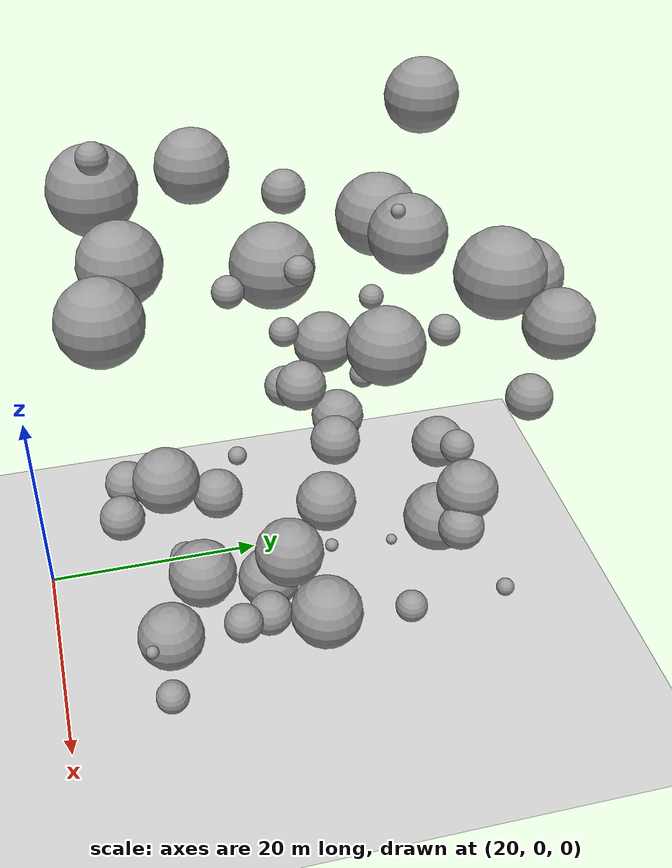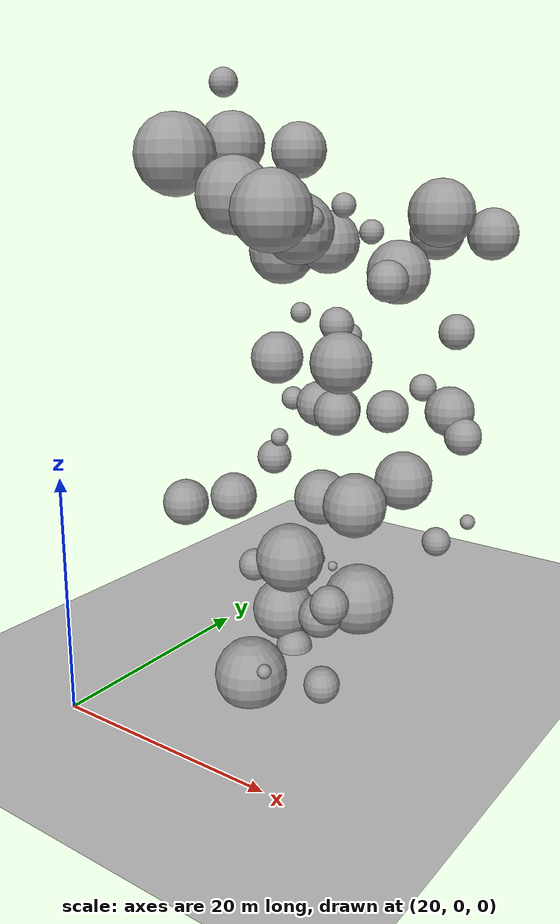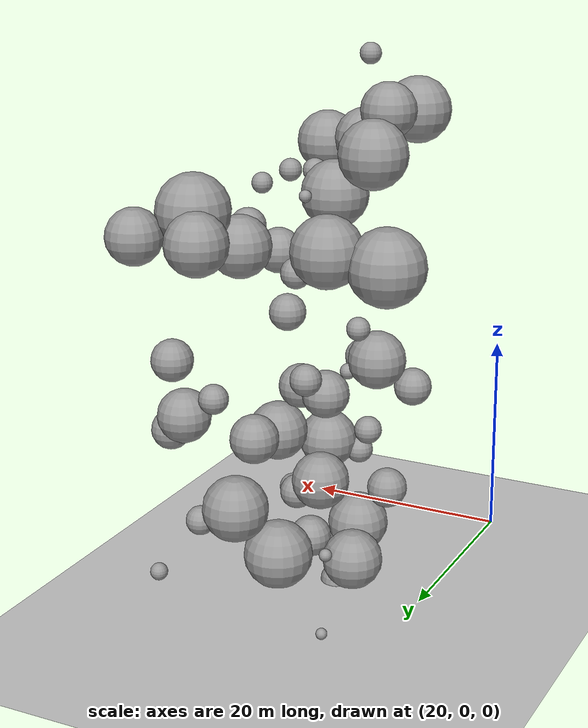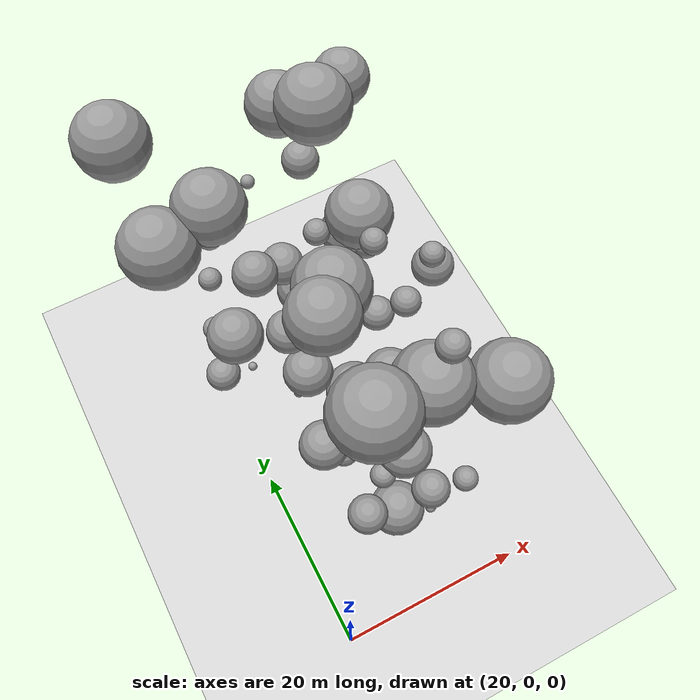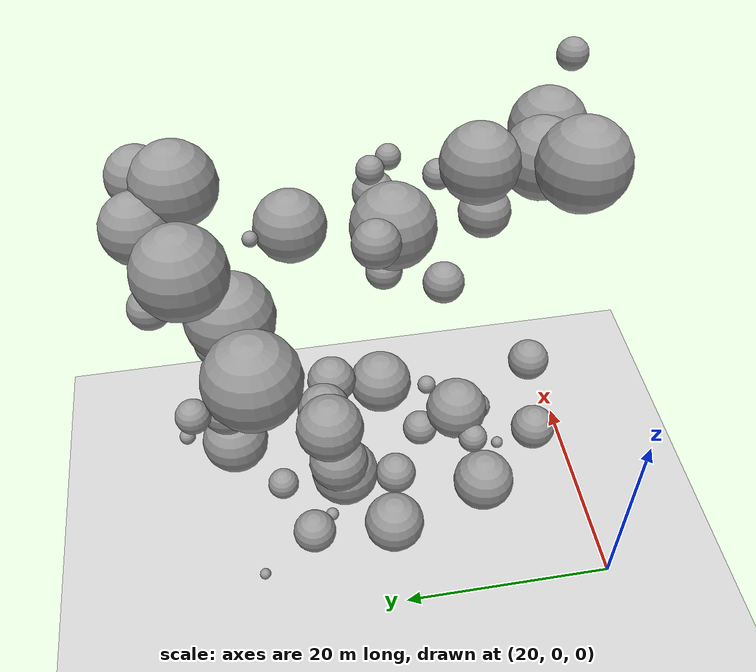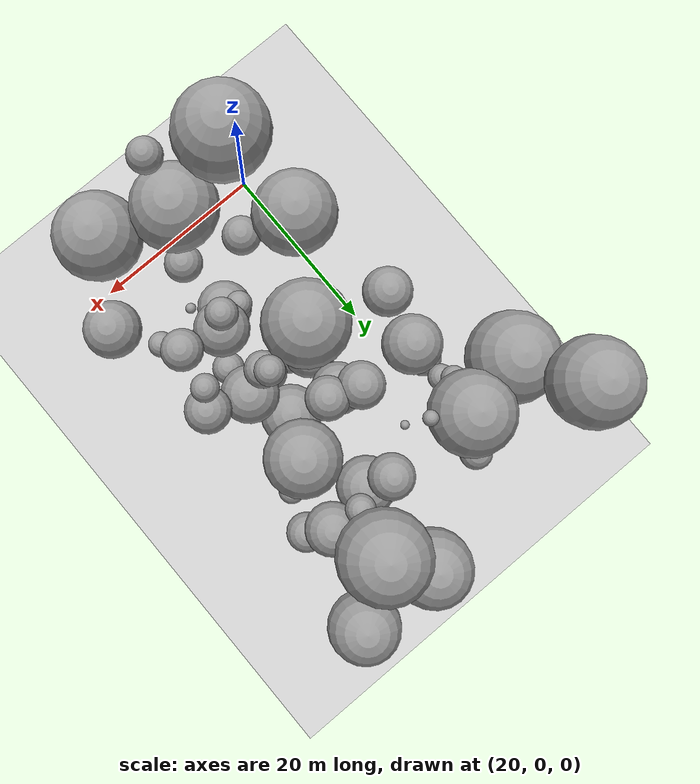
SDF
<sdf version="1.7">
 <world name="default">
  <model name="ground_plane">
   <static>1</static>
   <link name="link">
    <collision name="collision">
     <geometry><plane><normal>0 0 1</normal><size>100 100</size></plane></geometry>
     <surface>
      <contact><collide_bitmask>65535</collide_bitmask></contact>
      <friction><ode><mu>100</mu><mu2>50</mu2></ode></friction>
     </surface>
    </collision>
    <visual name="visual">
     <cast_shadows>0</cast_shadows>
     <geometry><plane><normal>0 0 1</normal><size>100 100</size></plane></geometry>
     <material>
      <script><uri>file://media/materials/scripts/gazebo.material</uri><name>Gazebo/Grey</name></script>
     </material>
    </visual>
   </link>
  </model>
  <model name="sphere_0">
   <static>1</static>
   <pose>20 28 15 0 0 0</pose>
   <link name="link">
    <inertial>
     <mass>2270.6556930112333</mass>
     <inertia>
      <ixx>2802.7631227502798</ixx>
      <iyy>2802.7631227502798</iyy>
      <izz>2802.7631227502798</izz>
      <ixy>0</ixy>
      <ixz>0</ixz>
      <iyz>0</iyz>
     </inertia>
    </inertial>
    <collision name="collision">
     <geometry><sphere><radius>1.7566593790727731</radius></sphere></geometry>
    </collision>
    <visual name="visual">
     <geometry><sphere><radius>1.7566593790727731</radius></sphere></geometry>
     <material>
      <script><uri>file://media/materials/scripts/gazebo.material</uri><name>Gazebo/Grey</name></script>
     </material>
    </visual>
   </link>
  </model>
  <model name="sphere_5">
   <static>1</static>
   <pose>29 17 21 0 0 0</pose>
   <link name="link">
    <inertial>
     <mass>191.27032338474353</mass>
     <inertia>
      <ixx>45.367714927860675</ixx>
      <iyy>45.367714927860675</iyy>
      <izz>45.367714927860675</izz>
      <ixy>0</ixy>
      <ixz>0</ixz>
      <iyz>0</iyz>
     </inertia>
    </inertial>
    <collision name="collision">
     <geometry><sphere><radius>0.7700513045604033</radius></sphere></geometry>
    </collision>
    <visual name="visual">
     <geometry><sphere><radius>0.7700513045604033</radius></sphere></geometry>
     <material>
      <script><uri>file://media/materials/scripts/gazebo.material</uri><name>Gazebo/Grey</name></script>
     </material>
    </visual>
   </link>
  </model>
  <model name="sphere_22">
   <static>1</static>
   <pose>19 34 46 0 0 0</pose>
   <link name="link">
    <inertial>
     <mass>9752.387158366544</mass>
     <inertia>
      <ixx>31806.73874587203</ixx>
      <iyy>31806.73874587203</iyy>
      <izz>31806.73874587203</izz>
      <ixy>0</ixy>
      <ixz>0</ixz>
      <iyz>0</iyz>
     </inertia>
    </inertial>
    <collision name="collision">
     <geometry><sphere><radius>2.8554470301307804</radius></sphere></geometry>
    </collision>
    <visual name="visual">
     <geometry><sphere><radius>2.8554470301307804</radius></sphere></geometry>
     <material>
      <script><uri>file://media/materials/scripts/gazebo.material</uri><name>Gazebo/Grey</name></script>
     </material>
    </visual>
   </link>
  </model>
  <model name="sphere_45">
   <static>1</static>
   <pose>27 30 41 0 0 0</pose>
   <link name="link">
    <inertial>
     <mass>68.0435052667013</mass>
     <inertia>
      <ixx>8.102991478464112</ixx>
      <iyy>8.102991478464112</iyy>
      <izz>8.102991478464112</izz>
      <ixy>0</ixy>
      <ixz>0</ixz>
      <iyz>0</iyz>
     </inertia>
    </inertial>
    <collision name="collision">
     <geometry><sphere><radius>0.5456314014576218</radius></sphere></geometry>
    </collision>
    <visual name="visual">
     <geometry><sphere><radius>0.5456314014576218</radius></sphere></geometry>
     <material>
      <script><uri>file://media/materials/scripts/gazebo.material</uri><name>Gazebo/Grey</name></script>
     </material>
    </visual>
   </link>
  </model>
  <model name="sphere_51">
   <static>1</static>
   <pose>33 13 12 0 0 0</pose>
   <link name="link">
    <inertial>
     <mass>9968.043400749917</mass>
     <inertia>
      <ixx>32987.60499379496</ixx>
      <iyy>32987.60499379496</iyy>
      <izz>32987.60499379496</izz>
      <ixy>0</ixy>
      <ixz>0</ixz>
      <iyz>0</iyz>
     </inertia>
    </inertial>
    <collision name="collision">
     <geometry><sphere><radius>2.876341431337279</radius></sphere></geometry>
    </collision>
    <visual name="visual">
     <geometry><sphere><radius>2.876341431337279</radius></sphere></geometry>
     <material>
      <script><uri>file://media/materials/scripts/gazebo.material</uri><name>Gazebo/Grey</name></script>
     </material>
    </visual>
   </link>
  </model>
  <model name="sphere_57">
   <static>1</static>
   <pose>39 33 19 0 0 0</pose>
   <link name="link">
    <inertial>
     <mass>2531.615639080286</mass>
     <inertia>
      <ixx>3359.9323628471675</ixx>
      <iyy>3359.9323628471675</iyy>
      <izz>3359.9323628471675</izz>
      <ixy>0</ixy>
      <ixz>0</ixz>
      <iyz>0</iyz>
     </inertia>
    </inertial>
    <collision name="collision">
     <geometry><sphere><radius>1.821530245494342</radius></sphere></geometry>
    </collision>
    <visual name="visual">
     <geometry><sphere><radius>1.821530245494342</radius></sphere></geometry>
     <material>
      <script><uri>file://media/materials/scripts/gazebo.material</uri><name>Gazebo/Grey</name></script>
     </material>
    </visual>
   </link>
  </model>
  <model name="sphere_64">
   <static>1</static>
   <pose>29 20 39 0 0 0</pose>
   <link name="link">
    <inertial>
     <mass>12892.265324197353</mass>
     <inertia>
      <ixx>50646.52389224702</ixx>
      <iyy>50646.52389224702</iyy>
      <izz>50646.52389224702</izz>
      <ixy>0</ixy>
      <ixz>0</ixz>
      <iyz>0</iyz>
     </inertia>
    </inertial>
    <collision name="collision">
     <geometry><sphere><radius>3.1338644544676937</radius></sphere></geometry>
    </collision>
    <visual name="visual">
     <geometry><sphere><radius>3.1338644544676937</radius></sphere></geometry>
     <material>
      <script><uri>file://media/materials/scripts/gazebo.material</uri><name>Gazebo/Grey</name></script>
     </material>
    </visual>
   </link>
  </model>
  <model name="sphere_66">
   <static>1</static>
   <pose>32 7 19 0 0 0</pose>
   <link name="link">
    <inertial>
     <mass>2473.127378861323</mass>
     <inertia>
      <ixx>3231.5563059421133</ixx>
      <iyy>3231.5563059421133</iyy>
      <izz>3231.5563059421133</izz>
      <ixy>0</ixy>
      <ixz>0</ixz>
      <iyz>0</iyz>
     </inertia>
    </inertial>
    <collision name="collision">
     <geometry><sphere><radius>1.807393122420857</radius></sphere></geometry>
    </collision>
    <visual name="visual">
     <geometry><sphere><radius>1.807393122420857</radius></sphere></geometry>
     <material>
      <script><uri>file://media/materials/scripts/gazebo.material</uri><name>Gazebo/Grey</name></script>
     </material>
    </visual>
   </link>
  </model>
  <model name="sphere_77">
   <static>1</static>
   <pose>24 33 2 0 0 0</pose>
   <link name="link">
    <inertial>
     <mass>60.101798187273126</mass>
     <inertia>
      <ixx>6.588906755500617</ixx>
      <iyy>6.588906755500617</iyy>
      <izz>6.588906755500617</izz>
      <ixy>0</ixy>
      <ixz>0</ixz>
      <iyz>0</iyz>
     </inertia>
    </inertial>
    <collision name="collision">
     <geometry><sphere><radius>0.5235196076653724</radius></sphere></geometry>
    </collision>
    <visual name="visual">
     <geometry><sphere><radius>0.5235196076653724</radius></sphere></geometry>
     <material>
      <script><uri>file://media/materials/scripts/gazebo.material</uri><name>Gazebo/Grey</name></script>
     </material>
    </visual>
   </link>
  </model>
  <model name="sphere_78">
   <static>1</static>
   <pose>35 27 35 0 0 0</pose>
   <link name="link">
    <inertial>
     <mass>10097.018305198311</mass>
     <inertia>
      <ixx>33702.037523858635</ixx>
      <iyy>33702.037523858635</iyy>
      <izz>33702.037523858635</izz>
      <ixy>0</ixy>
      <ixz>0</ixz>
      <iyz>0</iyz>
     </inertia>
    </inertial>
    <collision name="collision">
     <geometry><sphere><radius>2.888693814193686</radius></sphere></geometry>
    </collision>
    <visual name="visual">
     <geometry><sphere><radius>2.888693814193686</radius></sphere></geometry>
     <material>
      <script><uri>file://media/materials/scripts/gazebo.material</uri><name>Gazebo/Grey</name></script>
     </material>
    </visual>
   </link>
  </model>
  <model name="sphere_114">
   <static>1</static>
   <pose>33 38 38 0 0 0</pose>
   <link name="link">
    <inertial>
     <mass>8843.637686748658</mass>
     <inertia>
      <ixx>27022.10360080191</ixx>
      <iyy>27022.10360080191</iyy>
      <izz>27022.10360080191</izz>
      <ixy>0</ixy>
      <ixz>0</ixz>
      <iyz>0</iyz>
     </inertia>
    </inertial>
    <collision name="collision">
     <geometry><sphere><radius>2.7638477188583233</radius></sphere></geometry>
    </collision>
    <visual name="visual">
     <geometry><sphere><radius>2.7638477188583233</radius></sphere></geometry>
     <material>
      <script><uri>file://media/materials/scripts/gazebo.material</uri><name>Gazebo/Grey</name></script>
     </material>
    </visual>
   </link>
  </model>
  <model name="sphere_133">
   <static>1</static>
   <pose>24 32 37 0 0 0</pose>
   <link name="link">
    <inertial>
     <mass>13145.344146442958</mass>
     <inertia>
      <ixx>52314.352281428546</ixx>
      <iyy>52314.352281428546</iyy>
      <izz>52314.352281428546</izz>
      <ixy>0</ixy>
      <ixz>0</ixz>
      <iyz>0</iyz>
     </inertia>
    </inertial>
    <collision name="collision">
     <geometry><sphere><radius>3.1542379337989663</radius></sphere></geometry>
    </collision>
    <visual name="visual">
     <geometry><sphere><radius>3.1542379337989663</radius></sphere></geometry>
     <material>
      <script><uri>file://media/materials/scripts/gazebo.material</uri><name>Gazebo/Grey</name></script>
     </material>
    </visual>
   </link>
  </model>
  <model name="sphere_139">
   <static>1</static>
   <pose>40 10 30 0 0 0</pose>
   <link name="link">
    <inertial>
     <mass>5206.849154664555</mass>
     <inertia>
      <ixx>11176.159177554977</ixx>
      <iyy>11176.159177554977</iyy>
      <izz>11176.159177554977</izz>
      <ixy>0</ixy>
      <ixz>0</ixz>
      <iyz>0</iyz>
     </inertia>
    </inertial>
    <collision name="collision">
     <geometry><sphere><radius>2.316481283612441</radius></sphere></geometry>
    </collision>
    <visual name="visual">
     <geometry><sphere><radius>2.316481283612441</radius></sphere></geometry>
     <material>
      <script><uri>file://media/materials/scripts/gazebo.material</uri><name>Gazebo/Grey</name></script>
     </material>
    </visual>
   </link>
  </model>
  <model name="sphere_169">
   <static>1</static>
   <pose>27 26 22 0 0 0</pose>
   <link name="link">
    <inertial>
     <mass>4297.35825928947</mass>
     <inertia>
      <ixx>8115.903111416765</ixx>
      <iyy>8115.903111416765</iyy>
      <izz>8115.903111416765</izz>
      <ixy>0</ixy>
      <ixz>0</ixz>
      <iyz>0</iyz>
     </inertia>
    </inertial>
    <collision name="collision">
     <geometry><sphere><radius>2.172889546659883</radius></sphere></geometry>
    </collision>
    <visual name="visual">
     <geometry><sphere><radius>2.172889546659883</radius></sphere></geometry>
     <material>
      <script><uri>file://media/materials/scripts/gazebo.material</uri><name>Gazebo/Grey</name></script>
     </material>
    </visual>
   </link>
  </model>
  <model name="sphere_181">
   <static>1</static>
   <pose>19 31 36 0 0 0</pose>
   <link name="link">
    <inertial>
     <mass>16452.66153429412</mass>
     <inertia>
      <ixx>76043.3412332709</ixx>
      <iyy>76043.3412332709</iyy>
      <izz>76043.3412332709</izz>
      <ixy>0</ixy>
      <ixz>0</ixz>
      <iyz>0</iyz>
     </inertia>
    </inertial>
    <collision name="collision">
     <geometry><sphere><radius>3.3992453963462963</radius></sphere></geometry>
    </collision>
    <visual name="visual">
     <geometry><sphere><radius>3.3992453963462963</radius></sphere></geometry>
     <material>
      <script><uri>file://media/materials/scripts/gazebo.material</uri><name>Gazebo/Grey</name></script>
     </material>
    </visual>
   </link>
  </model>
  <model name="sphere_184">
   <static>1</static>
   <pose>35 35 40 0 0 0</pose>
   <link name="link">
    <inertial>
     <mass>14599.516102869015</mass>
     <inertia>
      <ixx>62311.043010096655</ixx>
      <iyy>62311.043010096655</iyy>
      <izz>62311.043010096655</izz>
      <ixy>0</ixy>
      <ixz>0</ixz>
      <iyz>0</iyz>
     </inertia>
    </inertial>
    <collision name="collision">
     <geometry><sphere><radius>3.266504674716299</radius></sphere></geometry>
    </collision>
    <visual name="visual">
     <geometry><sphere><radius>3.266504674716299</radius></sphere></geometry>
     <material>
      <script><uri>file://media/materials/scripts/gazebo.material</uri><name>Gazebo/Grey</name></script>
     </material>
    </visual>
   </link>
  </model>
  <model name="sphere_199">
   <static>1</static>
   <pose>32 19 4 0 0 0</pose>
   <link name="link">
    <inertial>
     <mass>3458.0947553267174</mass>
     <inertia>
      <ixx>5650.181521549466</ixx>
      <iyy>5650.181521549466</iyy>
      <izz>5650.181521549466</izz>
      <ixy>0</ixy>
      <ixz>0</ixz>
      <iyz>0</iyz>
     </inertia>
    </inertial>
    <collision name="collision">
     <geometry><sphere><radius>2.02107653542966</radius></sphere></geometry>
    </collision>
    <visual name="visual">
     <geometry><sphere><radius>2.02107653542966</radius></sphere></geometry>
     <material>
      <script><uri>file://media/materials/scripts/gazebo.material</uri><name>Gazebo/Grey</name></script>
     </material>
    </visual>
   </link>
  </model>
  <model name="sphere_201">
   <static>1</static>
   <pose>30 34 20 0 0 0</pose>
   <link name="link">
    <inertial>
     <mass>4282.60109522161</mass>
     <inertia>
      <ixx>8069.5061702635</ixx>
      <iyy>8069.5061702635</iyy>
      <izz>8069.5061702635</izz>
      <ixy>0</ixy>
      <ixz>0</ixz>
      <iyz>0</iyz>
     </inertia>
    </inertial>
    <collision name="collision">
     <geometry><sphere><radius>2.170399453878668</radius></sphere></geometry>
    </collision>
    <visual name="visual">
     <geometry><sphere><radius>2.170399453878668</radius></sphere></geometry>
     <material>
      <script><uri>file://media/materials/scripts/gazebo.material</uri><name>Gazebo/Grey</name></script>
     </material>
    </visual>
   </link>
  </model>
  <model name="sphere_206">
   <static>1</static>
   <pose>31 10 2 0 0 0</pose>
   <link name="link">
    <inertial>
     <mass>12203.724271164217</mass>
     <inertia>
      <ixx>46219.10835758919</ixx>
      <iyy>46219.10835758919</iyy>
      <izz>46219.10835758919</izz>
      <ixy>0</ixy>
      <ixz>0</ixz>
      <iyz>0</iyz>
     </inertia>
    </inertial>
    <collision name="collision">
     <geometry><sphere><radius>3.077050277519696</radius></sphere></geometry>
    </collision>
    <visual name="visual">
     <geometry><sphere><radius>3.077050277519696</radius></sphere></geometry>
     <material>
      <script><uri>file://media/materials/scripts/gazebo.material</uri><name>Gazebo/Grey</name></script>
     </material>
    </visual>
   </link>
  </model>
  <model name="sphere_223">
   <static>1</static>
   <pose>33 20 31 0 0 0</pose>
   <link name="link">
    <inertial>
     <mass>1369.0816200935692</mass>
     <inertia>
      <ixx>1206.0995403685706</ixx>
      <iyy>1206.0995403685706</iyy>
      <izz>1206.0995403685706</izz>
      <ixy>0</ixy>
      <ixz>0</ixz>
      <iyz>0</iyz>
     </inertia>
    </inertial>
    <collision name="collision">
     <geometry><sphere><radius>1.4840444539923814</radius></sphere></geometry>
    </collision>
    <visual name="visual">
     <geometry><sphere><radius>1.4840444539923814</radius></sphere></geometry>
     <material>
      <script><uri>file://media/materials/scripts/gazebo.material</uri><name>Gazebo/Grey</name></script>
     </material>
    </visual>
   </link>
  </model>
  <model name="sphere_224">
   <static>1</static>
   <pose>37 39 8 0 0 0</pose>
   <link name="link">
    <inertial>
     <mass>201.99089472262148</mass>
     <inertia>
      <ixx>49.684459919075806</ixx>
      <iyy>49.684459919075806</iyy>
      <izz>49.684459919075806</izz>
      <ixy>0</ixy>
      <ixz>0</ixz>
      <iyz>0</iyz>
     </inertia>
    </inertial>
    <collision name="collision">
     <geometry><sphere><radius>0.7841775313809124</radius></sphere></geometry>
    </collision>
    <visual name="visual">
     <geometry><sphere><radius>0.7841775313809124</radius></sphere></geometry>
     <material>
      <script><uri>file://media/materials/scripts/gazebo.material</uri><name>Gazebo/Grey</name></script>
     </material>
    </visual>
   </link>
  </model>
  <model name="sphere_248">
   <static>1</static>
   <pose>37 19 39 0 0 0</pose>
   <link name="link">
    <inertial>
     <mass>418.77252076952135</mass>
     <inertia>
      <ixx>167.48061440276481</ixx>
      <iyy>167.48061440276481</iyy>
      <izz>167.48061440276481</izz>
      <ixy>0</ixy>
      <ixz>0</ixz>
      <iyz>0</iyz>
     </inertia>
    </inertial>
    <collision name="collision">
     <geometry><sphere><radius>0.9999152430407412</radius></sphere></geometry>
    </collision>
    <visual name="visual">
     <geometry><sphere><radius>0.9999152430407412</radius></sphere></geometry>
     <material>
      <script><uri>file://media/materials/scripts/gazebo.material</uri><name>Gazebo/Grey</name></script>
     </material>
    </visual>
   </link>
  </model>
  <model name="sphere_253">
   <static>1</static>
   <pose>31 9 42 0 0 0</pose>
   <link name="link">
    <inertial>
     <mass>11135.529603051336</mass>
     <inertia>
      <ixx>39675.1928540146</ixx>
      <iyy>39675.1928540146</iyy>
      <izz>39675.1928540146</izz>
      <ixy>0</ixy>
      <ixz>0</ixz>
      <iyz>0</iyz>
     </inertia>
    </inertial>
    <collision name="collision">
     <geometry><sphere><radius>2.984517221020319</radius></sphere></geometry>
    </collision>
    <visual name="visual">
     <geometry><sphere><radius>2.984517221020319</radius></sphere></geometry>
     <material>
      <script><uri>file://media/materials/scripts/gazebo.material</uri><name>Gazebo/Grey</name></script>
     </material>
    </visual>
   </link>
  </model>
  <model name="sphere_256">
   <static>1</static>
   <pose>28 25 13 0 0 0</pose>
   <link name="link">
    <inertial>
     <mass>7859.994466718793</mass>
     <inertia>
      <ixx>22200.93774361588</ixx>
      <iyy>22200.93774361588</iyy>
      <izz>22200.93774361588</izz>
      <ixy>0</ixy>
      <ixz>0</ixz>
      <iyz>0</iyz>
     </inertia>
    </inertial>
    <collision name="collision">
     <geometry><sphere><radius>2.6573242063892257</radius></sphere></geometry>
    </collision>
    <visual name="visual">
     <geometry><sphere><radius>2.6573242063892257</radius></sphere></geometry>
     <material>
      <script><uri>file://media/materials/scripts/gazebo.material</uri><name>Gazebo/Grey</name></script>
     </material>
    </visual>
   </link>
  </model>
  <model name="sphere_270">
   <static>1</static>
   <pose>38 20 35 0 0 0</pose>
   <link name="link">
    <inertial>
     <mass>2186.3296357197287</mass>
     <inertia>
      <ixx>2631.441106233168</ixx>
      <iyy>2631.441106233168</iyy>
      <izz>2631.441106233168</izz>
      <ixy>0</ixy>
      <ixz>0</ixz>
      <iyz>0</iyz>
     </inertia>
    </inertial>
    <collision name="collision">
     <geometry><sphere><radius>1.7346386179977165</radius></sphere></geometry>
    </collision>
    <visual name="visual">
     <geometry><sphere><radius>1.7346386179977165</radius></sphere></geometry>
     <material>
      <script><uri>file://media/materials/scripts/gazebo.material</uri><name>Gazebo/Grey</name></script>
     </material>
    </visual>
   </link>
  </model>
  <model name="sphere_272">
   <static>1</static>
   <pose>37 34 21 0 0 0</pose>
   <link name="link">
    <inertial>
     <mass>6104.979412344921</mass>
     <inertia>
      <ixx>14570.50456599319</ixx>
      <iyy>14570.50456599319</iyy>
      <izz>14570.50456599319</izz>
      <ixy>0</ixy>
      <ixz>0</ixz>
      <iyz>0</iyz>
     </inertia>
    </inertial>
    <collision name="collision">
     <geometry><sphere><radius>2.4426722472523403</radius></sphere></geometry>
    </collision>
    <visual name="visual">
     <geometry><sphere><radius>2.4426722472523403</radius></sphere></geometry>
     <material>
      <script><uri>file://media/materials/scripts/gazebo.material</uri><name>Gazebo/Grey</name></script>
     </material>
    </visual>
   </link>
  </model>
  <model name="sphere_288">
   <static>1</static>
   <pose>22 30 30 0 0 0</pose>
   <link name="link">
    <inertial>
     <mass>453.21371186811</mass>
     <inertia>
      <ixx>191.06126692861835</ixx>
      <iyy>191.06126692861835</iyy>
      <izz>191.06126692861835</izz>
      <ixy>0</ixy>
      <ixz>0</ixz>
      <iyz>0</iyz>
     </inertia>
    </inertial>
    <collision name="collision">
     <geometry><sphere><radius>1.0266083930509629</radius></sphere></geometry>
    </collision>
    <visual name="visual">
     <geometry><sphere><radius>1.0266083930509629</radius></sphere></geometry>
     <material>
      <script><uri>file://media/materials/scripts/gazebo.material</uri><name>Gazebo/Grey</name></script>
     </material>
    </visual>
   </link>
  </model>
  <model name="sphere_300">
   <static>1</static>
   <pose>30 25 22 0 0 0</pose>
   <link name="link">
    <inertial>
     <mass>3512.453335689613</mass>
     <inertia>
      <ixx>5798.9832870621785</ixx>
      <iyy>5798.9832870621785</iyy>
      <izz>5798.9832870621785</izz>
      <ixy>0</ixy>
      <ixz>0</ixz>
      <iyz>0</iyz>
     </inertia>
    </inertial>
    <collision name="collision">
     <geometry><sphere><radius>2.031611447567801</radius></sphere></geometry>
    </collision>
    <visual name="visual">
     <geometry><sphere><radius>2.031611447567801</radius></sphere></geometry>
     <material>
      <script><uri>file://media/materials/scripts/gazebo.material</uri><name>Gazebo/Grey</name></script>
     </material>
    </visual>
   </link>
  </model>
  <model name="sphere_303">
   <static>1</static>
   <pose>26 8 45 0 0 0</pose>
   <link name="link">
    <inertial>
     <mass>13743.600053513814</mass>
     <inertia>
      <ixx>56342.36843191804</ixx>
      <iyy>56342.36843191804</iyy>
      <izz>56342.36843191804</izz>
      <ixy>0</ixy>
      <ixz>0</ixz>
      <iyz>0</iyz>
     </inertia>
    </inertial>
    <collision name="collision">
     <geometry><sphere><radius>3.201380532777705</radius></sphere></geometry>
    </collision>
    <visual name="visual">
     <geometry><sphere><radius>3.201380532777705</radius></sphere></geometry>
     <material>
      <script><uri>file://media/materials/scripts/gazebo.material</uri><name>Gazebo/Grey</name></script>
     </material>
    </visual>
   </link>
  </model>
  <model name="sphere_304">
   <static>1</static>
   <pose>35 16 7 0 0 0</pose>
   <link name="link">
    <inertial>
     <mass>2099.022649115271</mass>
     <inertia>
      <ixx>2458.646699967003</ixx>
      <iyy>2458.646699967003</iyy>
      <izz>2458.646699967003</izz>
      <ixy>0</ixy>
      <ixz>0</ixz>
      <iyz>0</iyz>
     </inertia>
    </inertial>
    <collision name="collision">
     <geometry><sphere><radius>1.7112344123191958</radius></sphere></geometry>
    </collision>
    <visual name="visual">
     <geometry><sphere><radius>1.7112344123191958</radius></sphere></geometry>
     <material>
      <script><uri>file://media/materials/scripts/gazebo.material</uri><name>Gazebo/Grey</name></script>
     </material>
    </visual>
   </link>
  </model>
  <model name="sphere_307">
   <static>1</static>
   <pose>33 21 41 0 0 0</pose>
   <link name="link">
    <inertial>
     <mass>478.35754473119795</mass>
     <inertia>
      <ixx>209.05246780998982</ixx>
      <iyy>209.05246780998982</iyy>
      <izz>209.05246780998982</izz>
      <ixy>0</ixy>
      <ixz>0</ixz>
      <iyz>0</iyz>
     </inertia>
    </inertial>
    <collision name="collision">
     <geometry><sphere><radius>1.0452528000036168</radius></sphere></geometry>
    </collision>
    <visual name="visual">
     <geometry><sphere><radius>1.0452528000036168</radius></sphere></geometry>
     <material>
      <script><uri>file://media/materials/scripts/gazebo.material</uri><name>Gazebo/Grey</name></script>
     </material>
    </visual>
   </link>
  </model>
  <model name="sphere_308">
   <static>1</static>
   <pose>27 20 3 0 0 0</pose>
   <link name="link">
    <inertial>
     <mass>10245.395958385692</mass>
     <inertia>
      <ixx>34531.5042628714</ixx>
      <iyy>34531.5042628714</iyy>
      <izz>34531.5042628714</izz>
      <ixy>0</ixy>
      <ixz>0</ixz>
      <iyz>0</iyz>
     </inertia>
    </inertial>
    <collision name="collision">
     <geometry><sphere><radius>2.9027750353605706</radius></sphere></geometry>
    </collision>
    <visual name="visual">
     <geometry><sphere><radius>2.9027750353605706</radius></sphere></geometry>
     <material>
      <script><uri>file://media/materials/scripts/gazebo.material</uri><name>Gazebo/Grey</name></script>
     </material>
    </visual>
   </link>
  </model>
  <model name="sphere_310">
   <static>1</static>
   <pose>35 39 28 0 0 0</pose>
   <link name="link">
    <inertial>
     <mass>2555.317128217936</mass>
     <inertia>
      <ixx>3412.5230630757806</ixx>
      <iyy>3412.5230630757806</iyy>
      <izz>3412.5230630757806</izz>
      <ixy>0</ixy>
      <ixz>0</ixz>
      <iyz>0</iyz>
     </inertia>
    </inertial>
    <collision name="collision">
     <geometry><sphere><radius>1.8271971068386512</radius></sphere></geometry>
    </collision>
    <visual name="visual">
     <geometry><sphere><radius>1.8271971068386512</radius></sphere></geometry>
     <material>
      <script><uri>file://media/materials/scripts/gazebo.material</uri><name>Gazebo/Grey</name></script>
     </material>
    </visual>
   </link>
  </model>
  <model name="sphere_312">
   <static>1</static>
   <pose>37 14 25 0 0 0</pose>
   <link name="link">
    <inertial>
     <mass>2656.372503440016</mass>
     <inertia>
      <ixx>3640.4008912263494</ixx>
      <iyy>3640.4008912263494</iyy>
      <izz>3640.4008912263494</izz>
      <ixy>0</ixy>
      <ixz>0</ixz>
      <iyz>0</iyz>
     </inertia>
    </inertial>
    <collision name="collision">
     <geometry><sphere><radius>1.850973164080664</radius></sphere></geometry>
    </collision>
    <visual name="visual">
     <geometry><sphere><radius>1.850973164080664</radius></sphere></geometry>
     <material>
      <script><uri>file://media/materials/scripts/gazebo.material</uri><name>Gazebo/Grey</name></script>
     </material>
    </visual>
   </link>
  </model>
  <model name="sphere_313">
   <static>1</static>
   <pose>35 20 15 0 0 0</pose>
   <link name="link">
    <inertial>
     <mass>9710.38343417836</mass>
     <inertia>
      <ixx>31578.746276075224</ixx>
      <iyy>31578.746276075224</iyy>
      <izz>31578.746276075224</izz>
      <ixy>0</ixy>
      <ixz>0</ixz>
      <iyz>0</iyz>
     </inertia>
    </inertial>
    <collision name="collision">
     <geometry><sphere><radius>2.8513416415543054</radius></sphere></geometry>
    </collision>
    <visual name="visual">
     <geometry><sphere><radius>2.8513416415543054</radius></sphere></geometry>
     <material>
      <script><uri>file://media/materials/scripts/gazebo.material</uri><name>Gazebo/Grey</name></script>
     </material>
    </visual>
   </link>
  </model>
  <model name="sphere_322">
   <static>1</static>
   <pose>21 30 21 0 0 0</pose>
   <link name="link">
    <inertial>
     <mass>709.8564545104846</mass>
     <inertia>
      <ixx>403.6006073654623</ixx>
      <iyy>403.6006073654623</iyy>
      <izz>403.6006073654623</izz>
      <ixy>0</ixy>
      <ixz>0</ixz>
      <iyz>0</iyz>
     </inertia>
    </inertial>
    <collision name="collision">
     <geometry><sphere><radius>1.192231637095479</radius></sphere></geometry>
    </collision>
    <visual name="visual">
     <geometry><sphere><radius>1.192231637095479</radius></sphere></geometry>
     <material>
      <script><uri>file://media/materials/scripts/gazebo.material</uri><name>Gazebo/Grey</name></script>
     </material>
    </visual>
   </link>
  </model>
  <model name="sphere_330">
   <static>1</static>
   <pose>39 38 38 0 0 0</pose>
   <link name="link">
    <inertial>
     <mass>6548.830974069719</mass>
     <inertia>
      <ixx>16378.49103947619</ixx>
      <iyy>16378.49103947619</iyy>
      <izz>16378.49103947619</izz>
      <ixy>0</ixy>
      <ixz>0</ixz>
      <iyz>0</iyz>
     </inertia>
    </inertial>
    <collision name="collision">
     <geometry><sphere><radius>2.500489627563552</radius></sphere></geometry>
    </collision>
    <visual name="visual">
     <geometry><sphere><radius>2.500489627563552</radius></sphere></geometry>
     <material>
      <script><uri>file://media/materials/scripts/gazebo.material</uri><name>Gazebo/Grey</name></script>
     </material>
    </visual>
   </link>
  </model>
  <model name="sphere_337">
   <static>1</static>
   <pose>24 22 42 0 0 0</pose>
   <link name="link">
    <inertial>
     <mass>1871.0561035547776</mass>
     <inertia>
      <ixx>2029.9200589173327</ixx>
      <iyy>2029.9200589173327</iyy>
      <izz>2029.9200589173327</izz>
      <ixy>0</ixy>
      <ixz>0</ixz>
      <iyz>0</iyz>
     </inertia>
    </inertial>
    <collision name="collision">
     <geometry><sphere><radius>1.6468955910937002</radius></sphere></geometry>
    </collision>
    <visual name="visual">
     <geometry><sphere><radius>1.6468955910937002</radius></sphere></geometry>
     <material>
      <script><uri>file://media/materials/scripts/gazebo.material</uri><name>Gazebo/Grey</name></script>
     </material>
    </visual>
   </link>
  </model>
  <model name="sphere_353">
   <static>1</static>
   <pose>26 15 46 0 0 0</pose>
   <link name="link">
    <inertial>
     <mass>7615.263190187105</mass>
     <inertia>
      <ixx>21060.84447211221</ixx>
      <iyy>21060.84447211221</iyy>
      <izz>21060.84447211221</izz>
      <ixy>0</ixy>
      <ixz>0</ixz>
      <iyz>0</iyz>
     </inertia>
    </inertial>
    <collision name="collision"><geometry><sphere><radius>2.6294531430554</radius></sphere></geometry></collision>
    <visual name="visual">
     <geometry><sphere><radius>2.6294531430554</radius></sphere></geometry>
     <material>
      <script><uri>file://media/materials/scripts/gazebo.material</uri><name>Gazebo/Grey</name></script>
     </material>
    </visual>
   </link>
  </model>
  <model name="sphere_355">
   <static>1</static>
   <pose>30 12 11 0 0 0</pose>
   <link name="link">
    <inertial>
     <mass>1037.321815186155</mass>
     <inertia>
      <ixx>759.4924087019053</ixx>
      <iyy>759.4924087019053</iyy>
      <izz>759.4924087019053</izz>
      <ixy>0</ixy>
      <ixz>0</ixz>
      <iyz>0</iyz>
     </inertia>
    </inertial>
    <collision name="collision">
     <geometry><sphere><radius>1.352928879665826</radius></sphere></geometry>
    </collision>
    <visual name="visual">
     <geometry><sphere><radius>1.352928879665826</radius></sphere></geometry>
     <material>
      <script><uri>file://media/materials/scripts/gazebo.material</uri><name>Gazebo/Grey</name></script>
     </material>
    </visual>
   </link>
  </model>
  <model name="sphere_364">
   <static>1</static>
   <pose>34 8 4 0 0 0</pose>
   <link name="link">
    <inertial>
     <mass>87.45044703569269</mass>
     <inertia>
      <ixx>12.310366277065093</ixx>
      <iyy>12.310366277065093</iyy>
      <izz>12.310366277065093</izz>
      <ixy>0</ixy>
      <ixz>0</ixz>
      <iyz>0</iyz>
     </inertia>
    </inertial>
    <collision name="collision">
     <geometry><sphere><radius>0.5932318705691798</radius></sphere></geometry>
    </collision>
    <visual name="visual">
     <geometry><sphere><radius>0.5932318705691798</radius></sphere></geometry>
     <material>
      <script><uri>file://media/materials/scripts/gazebo.material</uri><name>Gazebo/Grey</name></script>
     </material>
    </visual>
   </link>
  </model>
  <model name="sphere_369">
   <static>1</static>
   <pose>35 39 27 0 0 0</pose>
   <link name="link">
    <inertial>
     <mass>164.44690403001866</mass>
     <inertia>
      <ixx>35.26769593673927</ixx>
      <iyy>35.26769593673927</iyy>
      <izz>35.26769593673927</izz>
      <ixy>0</ixy>
      <ixz>0</ixz>
      <iyz>0</iyz>
     </inertia>
    </inertial>
    <collision name="collision">
     <geometry><sphere><radius>0.7322269300419578</radius></sphere></geometry>
    </collision>
    <visual name="visual">
     <geometry><sphere><radius>0.7322269300419578</radius></sphere></geometry>
     <material>
      <script><uri>file://media/materials/scripts/gazebo.material</uri><name>Gazebo/Grey</name></script>
     </material>
    </visual>
   </link>
  </model>
  <model name="sphere_390">
   <static>1</static>
   <pose>27 26 6 0 0 0</pose>
   <link name="link">
    <inertial>
     <mass>96.03139493850915</mass>
     <inertia>
      <ixx>14.388747146854318</ixx>
      <iyy>14.388747146854318</iyy>
      <izz>14.388747146854318</izz>
      <ixy>0</ixy>
      <ixz>0</ixz>
      <iyz>0</iyz>
     </inertia>
    </inertial>
    <collision name="collision">
     <geometry><sphere><radius>0.6120330516943244</radius></sphere></geometry>
    </collision>
    <visual name="visual">
     <geometry><sphere><radius>0.6120330516943244</radius></sphere></geometry>
     <material>
      <script><uri>file://media/materials/scripts/gazebo.material</uri><name>Gazebo/Grey</name></script>
     </material>
    </visual>
   </link>
  </model>
  <model name="sphere_392">
   <static>1</static>
   <pose>33 24 4 0 0 0</pose>
   <link name="link">
    <inertial>
     <mass>15495.271878911413</mass>
     <inertia>
      <ixx>68812.32835703187</ixx>
      <iyy>68812.32835703187</iyy>
      <izz>68812.32835703187</izz>
      <ixy>0</ixy>
      <ixz>0</ixz>
      <iyz>0</iyz>
     </inertia>
    </inertial>
    <collision name="collision">
     <geometry><sphere><radius>3.3319887812857973</radius></sphere></geometry>
    </collision>
    <visual name="visual">
     <geometry><sphere><radius>3.3319887812857973</radius></sphere></geometry>
     <material>
      <script><uri>file://media/materials/scripts/gazebo.material</uri><name>Gazebo/Grey</name></script>
     </material>
    </visual>
   </link>
  </model>
  <model name="sphere_395">
   <static>1</static>
   <pose>22 26 26 0 0 0</pose>
   <link name="link">
    <inertial>
     <mass>7168.510531921586</mass>
     <inertia>
      <ixx>19042.141931100177</ixx>
      <iyy>19042.141931100177</iyy>
      <izz>19042.141931100177</izz>
      <ixy>0</ixy>
      <ixz>0</ixz>
      <iyz>0</iyz>
     </inertia>
    </inertial>
    <collision name="collision">
     <geometry><sphere><radius>2.5769941902286835</radius></sphere></geometry>
    </collision>
    <visual name="visual">
     <geometry><sphere><radius>2.5769941902286835</radius></sphere></geometry>
     <material>
      <script><uri>file://media/materials/scripts/gazebo.material</uri><name>Gazebo/Grey</name></script>
     </material>
    </visual>
   </link>
  </model>
  <model name="sphere_396">
   <static>1</static>
   <pose>24 36 27 0 0 0</pose>
   <link name="link">
    <inertial>
     <mass>1031.0510078105024</mass>
     <inertia>
      <ixx>751.855712183223</ixx>
      <iyy>751.855712183223</iyy>
      <izz>751.855712183223</izz>
      <ixy>0</ixy>
      <ixz>0</ixz>
      <iyz>0</iyz>
     </inertia>
    </inertial>
    <collision name="collision">
     <geometry><sphere><radius>1.3501971302609586</radius></sphere></geometry>
    </collision>
    <visual name="visual">
     <geometry><sphere><radius>1.3501971302609586</radius></sphere></geometry>
     <material>
      <script><uri>file://media/materials/scripts/gazebo.material</uri><name>Gazebo/Grey</name></script>
     </material>
    </visual>
   </link>
  </model>
  <model name="sphere_401">
   <static>1</static>
   <pose>38 30 9 0 0 0</pose>
   <link name="link">
    <inertial>
     <mass>1088.9652285253487</mass>
     <inertia>
      <ixx>823.5518355810628</ixx>
      <iyy>823.5518355810628</iyy>
      <izz>823.5518355810628</izz>
      <ixy>0</ixy>
      <ixz>0</ixz>
      <iyz>0</iyz>
     </inertia>
    </inertial>
    <collision name="collision">
     <geometry><sphere><radius>1.37501826701904</radius></sphere></geometry>
    </collision>
    <visual name="visual">
     <geometry><sphere><radius>1.37501826701904</radius></sphere></geometry>
     <material>
      <script><uri>file://media/materials/scripts/gazebo.material</uri><name>Gazebo/Grey</name></script>
     </material>
    </visual>
   </link>
  </model>
  <model name="sphere_403">
   <static>1</static>
   <pose>39 9 4 0 0 0</pose>
   <link name="link">
    <inertial>
     <mass>1247.4472425684278</mass>
     <inertia>
      <ixx>1032.8515305098258</ixx>
      <iyy>1032.8515305098258</iyy>
      <izz>1032.8515305098258</izz>
      <ixy>0</ixy>
      <ixz>0</ixz>
      <iyz>0</iyz>
     </inertia>
    </inertial>
    <collision name="collision">
     <geometry><sphere><radius>1.4387252291364927</radius></sphere></geometry>
    </collision>
    <visual name="visual">
     <geometry><sphere><radius>1.4387252291364927</radius></sphere></geometry>
     <material>
      <script><uri>file://media/materials/scripts/gazebo.material</uri><name>Gazebo/Grey</name></script>
     </material>
    </visual>
   </link>
  </model>
  <model name="sphere_421">
   <static>1</static>
   <pose>26 8 17 0 0 0</pose>
   <link name="link">
    <inertial>
     <mass>2865.576407228191</mass>
     <inertia>
      <ixx>4130.673862810874</ixx>
      <iyy>4130.673862810874</iyy>
      <izz>4130.673862810874</izz>
      <ixy>0</ixy>
      <ixz>0</ixz>
      <iyz>0</iyz>
     </inertia>
    </inertial>
    <collision name="collision">
     <geometry><sphere><radius>1.898342020879563</radius></sphere></geometry>
    </collision>
    <visual name="visual">
     <geometry><sphere><radius>1.898342020879563</radius></sphere></geometry>
     <material>
      <script><uri>file://media/materials/scripts/gazebo.material</uri><name>Gazebo/Grey</name></script>
     </material>
    </visual>
   </link>
  </model>
  <model name="sphere_445">
   <static>1</static>
   <pose>27 25 22 0 0 0</pose>
   <link name="link">
    <inertial>
     <mass>135.36103803999433</mass>
     <inertia>
      <ixx>25.497076015710274</ixx>
      <iyy>25.497076015710274</iyy>
      <izz>25.497076015710274</izz>
      <ixy>0</ixy>
      <ixz>0</ixz>
      <iyz>0</iyz>
     </inertia>
    </inertial>
    <collision name="collision">
     <geometry><sphere><radius>0.6862278753706286</radius></sphere></geometry>
    </collision>
    <visual name="visual">
     <geometry><sphere><radius>0.6862278753706286</radius></sphere></geometry>
     <material>
      <script><uri>file://media/materials/scripts/gazebo.material</uri><name>Gazebo/Grey</name></script>
     </material>
    </visual>
   </link>
  </model>
  <model name="sphere_448">
   <static>1</static>
   <pose>33 16 40 0 0 0</pose>
   <link name="link">
    <inertial>
     <mass>623.2032098792204</mass>
     <inertia>
      <ixx>324.87556992149854</ixx>
      <iyy>324.87556992149854</iyy>
      <izz>324.87556992149854</izz>
      <ixy>0</ixy>
      <ixz>0</ixz>
      <iyz>0</iyz>
     </inertia>
    </inertial>
    <collision name="collision">
     <geometry><sphere><radius>1.1415992919620641</radius></sphere></geometry>
    </collision>
    <visual name="visual">
     <geometry><sphere><radius>1.1415992919620641</radius></sphere></geometry>
     <material>
      <script><uri>file://media/materials/scripts/gazebo.material</uri><name>Gazebo/Grey</name></script>
     </material>
    </visual>
   </link>
  </model>
  <model name="sphere_460">
   <static>1</static>
   <pose>29 19 0 0 0 0</pose>
   <link name="link">
    <inertial>
     <mass>2037.2205689790644</mass>
     <inertia>
      <ixx>2339.183754612916</ixx>
      <iyy>2339.183754612916</iyy>
      <izz>2339.183754612916</izz>
      <ixy>0</ixy>
      <ixz>0</ixz>
      <iyz>0</iyz>
     </inertia>
    </inertial>
    <collision name="collision">
     <geometry><sphere><radius>1.6942720549068349</radius></sphere></geometry>
    </collision>
    <visual name="visual">
     <geometry><sphere><radius>1.6942720549068349</radius></sphere></geometry>
     <material>
      <script><uri>file://media/materials/scripts/gazebo.material</uri><name>Gazebo/Grey</name></script>
     </material>
    </visual>
   </link>
  </model>
  <model name="sphere_481">
   <static>1</static>
   <pose>32 34 13 0 0 0</pose>
   <link name="link">
    <inertial>
     <mass>11098.53923478459</mass>
     <inertia>
      <ixx>39455.77889917936</ixx>
      <iyy>39455.77889917936</iyy>
      <izz>39455.77889917936</izz>
      <ixy>0</ixy>
      <ixz>0</ixz>
      <iyz>0</iyz>
     </inertia>
    </inertial>
    <collision name="collision">
     <geometry><sphere><radius>2.981208865908195</radius></sphere></geometry>
    </collision>
    <visual name="visual">
     <geometry><sphere><radius>2.981208865908195</radius></sphere></geometry>
     <material>
      <script><uri>file://media/materials/scripts/gazebo.material</uri><name>Gazebo/Grey</name></script>
     </material>
    </visual>
   </link>
  </model>
  <model name="sphere_488">
   <static>1</static>
   <pose>34 34 23 0 0 0</pose>
   <link name="link">
    <inertial>
     <mass>1021.8432820242273</mass>
     <inertia>
      <ixx>740.698403490092</ixx>
      <iyy>740.698403490092</iyy>
      <izz>740.698403490092</izz>
      <ixy>0</ixy>
      <ixz>0</ixz>
      <iyz>0</iyz>
     </inertia>
    </inertial>
    <collision name="collision">
     <geometry><sphere><radius>1.3461658269374124</radius></sphere></geometry>
    </collision>
    <visual name="visual">
     <geometry><sphere><radius>1.3461658269374124</radius></sphere></geometry>
     <material>
      <script><uri>file://media/materials/scripts/gazebo.material</uri><name>Gazebo/Grey</name></script>
     </material>
    </visual>
   </link>
  </model>
  <model name="sphere_491">
   <static>1</static>
   <pose>31 8 50 0 0 0</pose>
   <link name="link">
    <inertial>
     <mass>493.7118905246388</mass>
     <inertia>
      <ixx>220.3553317544458</ixx>
      <iyy>220.3553317544458</iyy>
      <izz>220.3553317544458</izz>
      <ixy>0</ixy>
      <ixz>0</ixz>
      <iyz>0</iyz>
     </inertia>
    </inertial>
    <collision name="collision">
     <geometry><sphere><radius>1.0563187592302148</radius></sphere></geometry>
    </collision>
    <visual name="visual">
     <geometry><sphere><radius>1.0563187592302148</radius></sphere></geometry>
     <material>
      <script><uri>file://media/materials/scripts/gazebo.material</uri><name>Gazebo/Grey</name></script>
     </material>
    </visual>
   </link>
  </model>
  <model name="sphere_496">
   <static>1</static>
   <pose>36 7 41 0 0 0</pose>
   <link name="link">
    <inertial>
     <mass>11443.198175357631</mass>
     <inertia>
      <ixx>41518.97440658759</ixx>
      <iyy>41518.97440658759</iyy>
      <izz>41518.97440658759</izz>
      <ixy>0</ixy>
      <ixz>0</ixz>
      <iyz>0</iyz>
     </inertia>
    </inertial>
    <collision name="collision">
     <geometry><sphere><radius>3.011754745380503</radius></sphere></geometry>
    </collision>
    <visual name="visual">
     <geometry><sphere><radius>3.011754745380503</radius></sphere></geometry>
     <material>
      <script><uri>file://media/materials/scripts/gazebo.material</uri><name>Gazebo/Grey</name></script>
     </material>
    </visual>
   </link>
  </model>
 </world>
</sdf>
